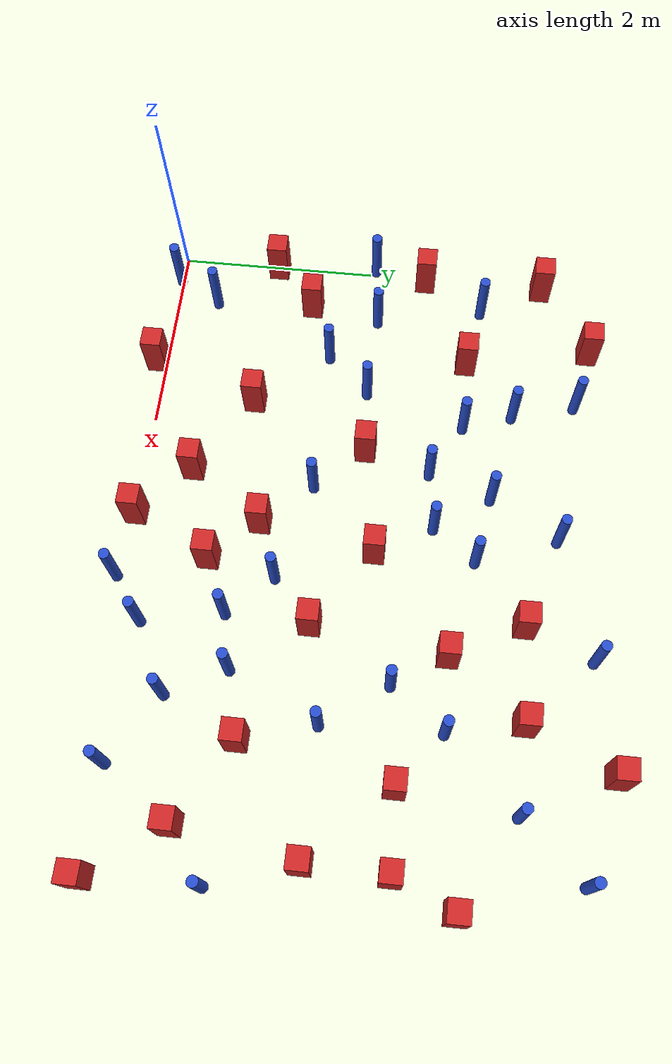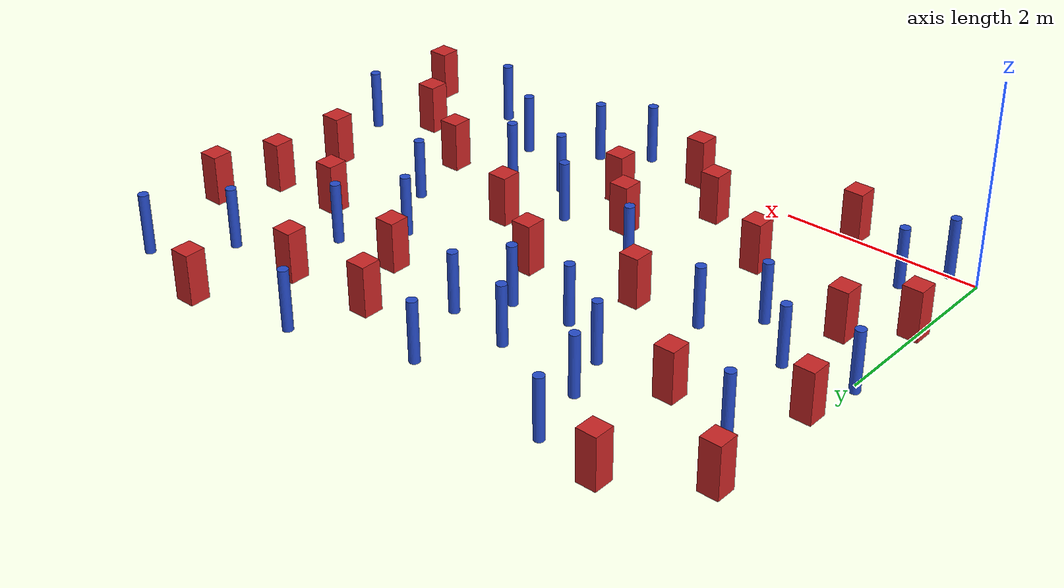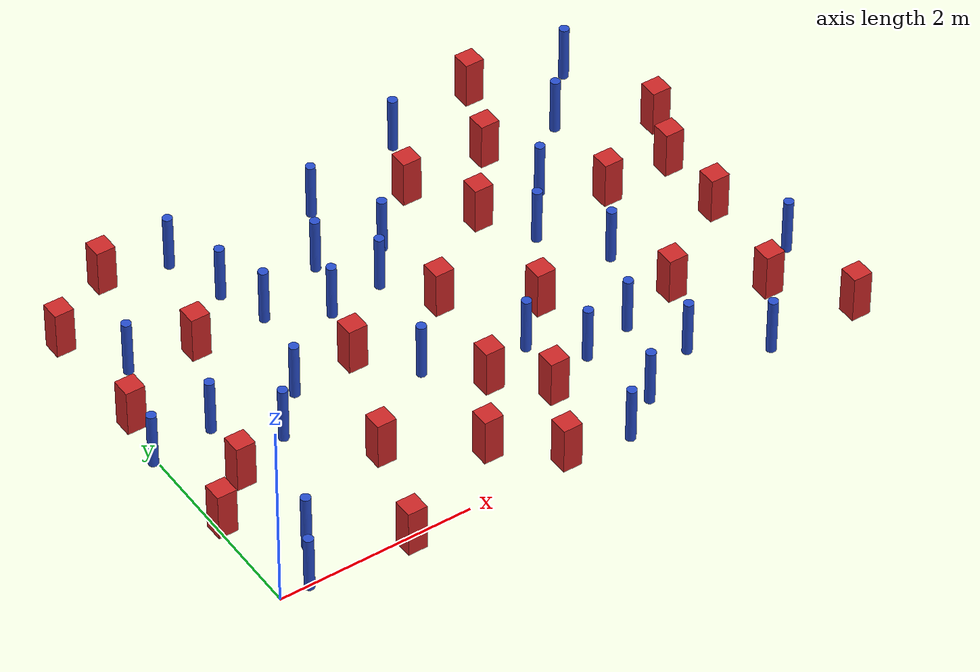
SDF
<sdf version="1.6">
 <model name="dense_1">
  <model name="pole_obstacle3">
   <static>true</static>
   <pose>1.4623566968 4.20926063526 -3.09024884793e-07 -7.19054271912e-07 -2.11315075134e-07 -1.93935509265e-07</pose>
   <link name="link">
    <pose>0 0 0.3 0 -0 0</pose>
    <inertial>
     <mass>1</mass>
     <inertia><ixx>0.145833</ixx><ixy>0</ixy><ixz>0</ixz><iyy>0.145833</iyy><iyz>0</iyz><izz>0.125</izz></inertia>
    </inertial>
    <collision name="collision">
     <geometry><cylinder><radius>0.05</radius><length>.6</length></cylinder></geometry>
    </collision>
    <visual name="visual">
     <geometry><cylinder><radius>0.05</radius><length>.6</length></cylinder></geometry>
     <material>
      <script><name>Gazebo/Blue</name><uri>file://media/materials/scripts/gazebo.material</uri></script>
     </material>
    </visual>
   </link>
  </model>
  <model name="square_post_obstacle4">
   <static>true</static>
   <pose>1.31986433456 -0.0795674390711 -4.36207812815e-07 3.75137919937e-06 9.77721102514e-07 2.47381364184e-05</pose>
   <link name="link">
    <pose>0 0 0.25 0 -0 0</pose>
    <inertial>
     <mass>100</mass>
     <inertia>
      <ixx>0.166667</ixx>
      <ixy>0</ixy>
      <ixz>0</ixz>
      <iyy>0.166667</iyy>
      <iyz>0</iyz>
      <izz>0.166667</izz>
     </inertia>
    </inertial>
    <collision name="collision"><geometry><box><size>.2 .2 .5</size></box></geometry></collision>
    <visual name="visual">
     <geometry><box><size>.2 .2 .5</size></box></geometry>
     <material>
      <script><name>Gazebo/Red</name><uri>file://media/materials/scripts/gazebo.material</uri></script>
     </material>
    </visual>
   </link>
  </model>
  <model name="pole_obstacle6">
   <static>true</static>
   <pose>2.60039260077 1.69104292245 -3.09024884793e-07 -7.19054271912e-07 -2.11315075122e-07 -1.93935509259e-07</pose>
   <link name="link">
    <pose>0 0 0.3 0 -0 0</pose>
    <inertial>
     <mass>1</mass>
     <inertia><ixx>0.145833</ixx><ixy>0</ixy><ixz>0</ixz><iyy>0.145833</iyy><iyz>0</iyz><izz>0.125</izz></inertia>
    </inertial>
    <collision name="collision">
     <geometry><cylinder><radius>0.05</radius><length>.6</length></cylinder></geometry>
    </collision>
    <visual name="visual">
     <geometry><cylinder><radius>0.05</radius><length>.6</length></cylinder></geometry>
     <material>
      <script><name>Gazebo/Blue</name><uri>file://media/materials/scripts/gazebo.material</uri></script>
     </material>
    </visual>
   </link>
  </model>
  <model name="square_post_obstacle10">
   <static>true</static>
   <pose>6.35777453444 3.31523075422 -4.36207812815e-07 3.75137919937e-06 9.77721102514e-07 2.47381364184e-05</pose>
   <link name="link">
    <pose>0 0 0.25 0 -0 0</pose>
    <inertial>
     <mass>100</mass>
     <inertia>
      <ixx>0.166667</ixx>
      <ixy>0</ixy>
      <ixz>0</ixz>
      <iyy>0.166667</iyy>
      <iyz>0</iyz>
      <izz>0.166667</izz>
     </inertia>
    </inertial>
    <collision name="collision"><geometry><box><size>.2 .2 .5</size></box></geometry></collision>
    <visual name="visual">
     <geometry><box><size>.2 .2 .5</size></box></geometry>
     <material>
      <script><name>Gazebo/Red</name><uri>file://media/materials/scripts/gazebo.material</uri></script>
     </material>
    </visual>
   </link>
  </model>
  <model name="square_post_obstacle19">
   <static>true</static>
   <pose>3.23109717422 2.34629957783 -4.36207812815e-07 3.75137919937e-06 9.77721102514e-07 2.47381364184e-05</pose>
   <link name="link">
    <pose>0 0 0.25 0 -0 0</pose>
    <inertial>
     <mass>100</mass>
     <inertia>
      <ixx>0.166667</ixx>
      <ixy>0</ixy>
      <ixz>0</ixz>
      <iyy>0.166667</iyy>
      <iyz>0</iyz>
      <izz>0.166667</izz>
     </inertia>
    </inertial>
    <collision name="collision"><geometry><box><size>.2 .2 .5</size></box></geometry></collision>
    <visual name="visual">
     <geometry><box><size>.2 .2 .5</size></box></geometry>
     <material>
      <script><name>Gazebo/Red</name><uri>file://media/materials/scripts/gazebo.material</uri></script>
     </material>
    </visual>
   </link>
  </model>
  <model name="square_post_obstacle31">
   <static>true</static>
   <pose>5.88534016546 0.849341082673 -4.36207812815e-07 3.75137919937e-06 9.77721102514e-07 2.47381364184e-05</pose>
   <link name="link">
    <pose>0 0 0.25 0 -0 0</pose>
    <inertial>
     <mass>100</mass>
     <inertia>
      <ixx>0.166667</ixx>
      <ixy>0</ixy>
      <ixz>0</ixz>
      <iyy>0.166667</iyy>
      <iyz>0</iyz>
      <izz>0.166667</izz>
     </inertia>
    </inertial>
    <collision name="collision"><geometry><box><size>.2 .2 .5</size></box></geometry></collision>
    <visual name="visual">
     <geometry><box><size>.2 .2 .5</size></box></geometry>
     <material>
      <script><name>Gazebo/Red</name><uri>file://media/materials/scripts/gazebo.material</uri></script>
     </material>
    </visual>
   </link>
  </model>
  <model name="square_post_obstacle33">
   <static>true</static>
   <pose>0.503062242504 1.44107326765 -4.36207812815e-07 3.75137919937e-06 9.77721102514e-07 2.47381364184e-05</pose>
   <link name="link">
    <pose>0 0 0.25 0 -0 0</pose>
    <inertial>
     <mass>100</mass>
     <inertia>
      <ixx>0.166667</ixx>
      <ixy>0</ixy>
      <ixz>0</ixz>
      <iyy>0.166667</iyy>
      <iyz>0</iyz>
      <izz>0.166667</izz>
     </inertia>
    </inertial>
    <collision name="collision"><geometry><box><size>.2 .2 .5</size></box></geometry></collision>
    <visual name="visual">
     <geometry><box><size>.2 .2 .5</size></box></geometry>
     <material>
      <script><name>Gazebo/Red</name><uri>file://media/materials/scripts/gazebo.material</uri></script>
     </material>
    </visual>
   </link>
  </model>
  <model name="pole_obstacle35">
   <static>true</static>
   <pose>0.620560896258 2.13645355765 -3.09024884793e-07 -7.19054271912e-07 -2.11315075129e-07 -1.93935509263e-07</pose>
   <link name="link">
    <pose>0 0 0.3 0 -0 0</pose>
    <inertial>
     <mass>1</mass>
     <inertia><ixx>0.145833</ixx><ixy>0</ixy><ixz>0</ixz><iyy>0.145833</iyy><iyz>0</iyz><izz>0.125</izz></inertia>
    </inertial>
    <collision name="collision">
     <geometry><cylinder><radius>0.05</radius><length>.6</length></cylinder></geometry>
    </collision>
    <visual name="visual">
     <geometry><cylinder><radius>0.05</radius><length>.6</length></cylinder></geometry>
     <material>
      <script><name>Gazebo/Blue</name><uri>file://media/materials/scripts/gazebo.material</uri></script>
     </material>
    </visual>
   </link>
  </model>
  <model name="pole_obstacle36">
   <static>true</static>
   <pose>6.04374949227 4.39701705484 -3.09024884793e-07 -7.19054271911e-07 -2.1131507516e-07 -1.93935509277e-07</pose>
   <link name="link">
    <pose>0 0 0.3 0 -0 0</pose>
    <inertial>
     <mass>1</mass>
     <inertia><ixx>0.145833</ixx><ixy>0</ixy><ixz>0</ixz><iyy>0.145833</iyy><iyz>0</iyz><izz>0.125</izz></inertia>
    </inertial>
    <collision name="collision">
     <geometry><cylinder><radius>0.05</radius><length>.6</length></cylinder></geometry>
    </collision>
    <visual name="visual">
     <geometry><cylinder><radius>0.05</radius><length>.6</length></cylinder></geometry>
     <material>
      <script><name>Gazebo/Blue</name><uri>file://media/materials/scripts/gazebo.material</uri></script>
     </material>
    </visual>
   </link>
  </model>
  <model name="square_post_obstacle39">
   <static>true</static>
   <pose>6.37643975947 0.168601150154 -4.36207812815e-07 3.75137919937e-06 9.77721102514e-07 2.47381364184e-05</pose>
   <link name="link">
    <pose>0 0 0.25 0 -0 0</pose>
    <inertial>
     <mass>100</mass>
     <inertia>
      <ixx>0.166667</ixx>
      <ixy>0</ixy>
      <ixz>0</ixz>
      <iyy>0.166667</iyy>
      <iyz>0</iyz>
      <izz>0.166667</izz>
     </inertia>
    </inertial>
    <collision name="collision"><geometry><box><size>.2 .2 .5</size></box></geometry></collision>
    <visual name="visual">
     <geometry><box><size>.2 .2 .5</size></box></geometry>
     <material>
      <script><name>Gazebo/Red</name><uri>file://media/materials/scripts/gazebo.material</uri></script>
     </material>
    </visual>
   </link>
  </model>
  <model name="pole_obstacle43">
   <static>true</static>
   <pose>5.53462977973 3.8077475827 -3.09024884793e-07 -7.19054271912e-07 -2.11315075144e-07 -1.93935509269e-07</pose>
   <link name="link">
    <pose>0 0 0.3 0 -0 0</pose>
    <inertial>
     <mass>1</mass>
     <inertia><ixx>0.145833</ixx><ixy>0</ixy><ixz>0</ixz><iyy>0.145833</iyy><iyz>0</iyz><izz>0.125</izz></inertia>
    </inertial>
    <collision name="collision">
     <geometry><cylinder><radius>0.05</radius><length>.6</length></cylinder></geometry>
    </collision>
    <visual name="visual">
     <geometry><cylinder><radius>0.05</radius><length>.6</length></cylinder></geometry>
     <material>
      <script><name>Gazebo/Blue</name><uri>file://media/materials/scripts/gazebo.material</uri></script>
     </material>
    </visual>
   </link>
  </model>
  <model name="pole_obstacle48">
   <static>true</static>
   <pose>4.92300519197 2.00692325377 -3.09024884793e-07 -7.19054271912e-07 -2.1131507513e-07 -1.93935509262e-07</pose>
   <link name="link">
    <pose>0 0 0.3 0 -0 0</pose>
    <inertial>
     <mass>1</mass>
     <inertia><ixx>0.145833</ixx><ixy>0</ixy><ixz>0</ixz><iyy>0.145833</iyy><iyz>0</iyz><izz>0.125</izz></inertia>
    </inertial>
    <collision name="collision">
     <geometry><cylinder><radius>0.05</radius><length>.6</length></cylinder></geometry>
    </collision>
    <visual name="visual">
     <geometry><cylinder><radius>0.05</radius><length>.6</length></cylinder></geometry>
     <material>
      <script><name>Gazebo/Blue</name><uri>file://media/materials/scripts/gazebo.material</uri></script>
     </material>
    </visual>
   </link>
  </model>
  <model name="square_post_obstacle50">
   <static>true</static>
   <pose>5.38820021094 2.7258554998 -4.36207812815e-07 3.75137919937e-06 9.77721102514e-07 2.47381364184e-05</pose>
   <link name="link">
    <pose>0 0 0.25 0 -0 0</pose>
    <inertial>
     <mass>100</mass>
     <inertia>
      <ixx>0.166667</ixx>
      <ixy>0</ixy>
      <ixz>0</ixz>
      <iyy>0.166667</iyy>
      <iyz>0</iyz>
      <izz>0.166667</izz>
     </inertia>
    </inertial>
    <collision name="collision"><geometry><box><size>.2 .2 .5</size></box></geometry></collision>
    <visual name="visual">
     <geometry><box><size>.2 .2 .5</size></box></geometry>
     <material>
      <script><name>Gazebo/Red</name><uri>file://media/materials/scripts/gazebo.material</uri></script>
     </material>
    </visual>
   </link>
  </model>
  <model name="square_post_obstacle53">
   <static>true</static>
   <pose>4.00072334522 1.82328823469 -4.36207812815e-07 3.75137919937e-06 9.77721102514e-07 2.47381364184e-05</pose>
   <link name="link">
    <pose>0 0 0.25 0 -0 0</pose>
    <inertial>
     <mass>100</mass>
     <inertia>
      <ixx>0.166667</ixx>
      <ixy>0</ixy>
      <ixz>0</ixz>
      <iyy>0.166667</iyy>
      <iyz>0</iyz>
      <izz>0.166667</izz>
     </inertia>
    </inertial>
    <collision name="collision"><geometry><box><size>.2 .2 .5</size></box></geometry></collision>
    <visual name="visual">
     <geometry><box><size>.2 .2 .5</size></box></geometry>
     <material>
      <script><name>Gazebo/Red</name><uri>file://media/materials/scripts/gazebo.material</uri></script>
     </material>
    </visual>
   </link>
  </model>
  <model name="square_post_obstacle59">
   <static>true</static>
   <pose>3.43612875165 0.786175362388 -4.36207812815e-07 3.75137919937e-06 9.77721102514e-07 2.47381364184e-05</pose>
   <link name="link">
    <pose>0 0 0.25 0 -0 0</pose>
    <inertial>
     <mass>100</mass>
     <inertia>
      <ixx>0.166667</ixx>
      <ixy>0</ixy>
      <ixz>0</ixz>
      <iyy>0.166667</iyy>
      <iyz>0</iyz>
      <izz>0.166667</izz>
     </inertia>
    </inertial>
    <collision name="collision"><geometry><box><size>.2 .2 .5</size></box></geometry></collision>
    <visual name="visual">
     <geometry><box><size>.2 .2 .5</size></box></geometry>
     <material>
      <script><name>Gazebo/Red</name><uri>file://media/materials/scripts/gazebo.material</uri></script>
     </material>
    </visual>
   </link>
  </model>
  <model name="pole_obstacle56">
   <static>true</static>
   <pose>2.3536835347 2.80569661578 -3.09024884793e-07 -7.19054271912e-07 -2.11315075144e-07 -1.93935509271e-07</pose>
   <link name="link">
    <pose>0 0 0.3 0 -0 0</pose>
    <inertial>
     <mass>1</mass>
     <inertia><ixx>0.145833</ixx><ixy>0</ixy><ixz>0</ixz><iyy>0.145833</iyy><iyz>0</iyz><izz>0.125</izz></inertia>
    </inertial>
    <collision name="collision">
     <geometry><cylinder><radius>0.05</radius><length>.6</length></cylinder></geometry>
    </collision>
    <visual name="visual">
     <geometry><cylinder><radius>0.05</radius><length>.6</length></cylinder></geometry>
     <material>
      <script><name>Gazebo/Blue</name><uri>file://media/materials/scripts/gazebo.material</uri></script>
     </material>
    </visual>
   </link>
  </model>
  <model name="pole_obstacle59">
   <static>true</static>
   <pose>4.78064047559 0.588167447889 -3.09024884793e-07 -7.19054271912e-07 -2.11315075134e-07 -1.93935509265e-07</pose>
   <link name="link">
    <pose>0 0 0.3 0 -0 0</pose>
    <inertial>
     <mass>1</mass>
     <inertia><ixx>0.145833</ixx><ixy>0</ixy><ixz>0</ixz><iyy>0.145833</iyy><iyz>0</iyz><izz>0.125</izz></inertia>
    </inertial>
    <collision name="collision">
     <geometry><cylinder><radius>0.05</radius><length>.6</length></cylinder></geometry>
    </collision>
    <visual name="visual">
     <geometry><cylinder><radius>0.05</radius><length>.6</length></cylinder></geometry>
     <material>
      <script><name>Gazebo/Blue</name><uri>file://media/materials/scripts/gazebo.material</uri></script>
     </material>
    </visual>
   </link>
  </model>
  <model name="square_post_obstacle62">
   <static>true</static>
   <pose>3.04533311304 0.017092746261 -4.36207812815e-07 3.75137919937e-06 9.77721102514e-07 2.47381364184e-05</pose>
   <link name="link">
    <pose>0 0 0.25 0 -0 0</pose>
    <inertial>
     <mass>100</mass>
     <inertia>
      <ixx>0.166667</ixx>
      <ixy>0</ixy>
      <ixz>0</ixz>
      <iyy>0.166667</iyy>
      <iyz>0</iyz>
      <izz>0.166667</izz>
     </inertia>
    </inertial>
    <collision name="collision"><geometry><box><size>.2 .2 .5</size></box></geometry></collision>
    <visual name="visual">
     <geometry><box><size>.2 .2 .5</size></box></geometry>
     <material>
      <script><name>Gazebo/Red</name><uri>file://media/materials/scripts/gazebo.material</uri></script>
     </material>
    </visual>
   </link>
  </model>
  <model name="pole_obstacle61">
   <static>true</static>
   <pose>4.10413252432 4.44278507739 -3.09024884793e-07 -7.19054271911e-07 -2.1131507516e-07 -1.93935509277e-07</pose>
   <link name="link">
    <pose>0 0 0.3 0 -0 0</pose>
    <inertial>
     <mass>1</mass>
     <inertia><ixx>0.145833</ixx><ixy>0</ixy><ixz>0</ixz><iyy>0.145833</iyy><iyz>0</iyz><izz>0.125</izz></inertia>
    </inertial>
    <collision name="collision">
     <geometry><cylinder><radius>0.05</radius><length>.6</length></cylinder></geometry>
    </collision>
    <visual name="visual">
     <geometry><cylinder><radius>0.05</radius><length>.6</length></cylinder></geometry>
     <material>
      <script><name>Gazebo/Blue</name><uri>file://media/materials/scripts/gazebo.material</uri></script>
     </material>
    </visual>
   </link>
  </model>
  <model name="square_post_obstacle65">
   <static>true</static>
   <pose>0.0606723394 3.82437056992 -4.36207812815e-07 3.75137919937e-06 9.77721102514e-07 2.47381364184e-05</pose>
   <link name="link">
    <pose>0 0 0.25 0 -0 0</pose>
    <inertial>
     <mass>100</mass>
     <inertia>
      <ixx>0.166667</ixx>
      <ixy>0</ixy>
      <ixz>0</ixz>
      <iyy>0.166667</iyy>
      <iyz>0</iyz>
      <izz>0.166667</izz>
     </inertia>
    </inertial>
    <collision name="collision"><geometry><box><size>.2 .2 .5</size></box></geometry></collision>
    <visual name="visual">
     <geometry><box><size>.2 .2 .5</size></box></geometry>
     <material>
      <script><name>Gazebo/Red</name><uri>file://media/materials/scripts/gazebo.material</uri></script>
     </material>
    </visual>
   </link>
  </model>
  <model name="pole_obstacle78">
   <static>true</static>
   <pose>4.50170225332 1.14489434599 -3.09024884793e-07 -7.19054271912e-07 -2.11315075124e-07 -1.93935509261e-07</pose>
   <link name="link">
    <pose>0 0 0.3 0 -0 0</pose>
    <inertial>
     <mass>1</mass>
     <inertia><ixx>0.145833</ixx><ixy>0</ixy><ixz>0</ixz><iyy>0.145833</iyy><iyz>0</iyz><izz>0.125</izz></inertia>
    </inertial>
    <collision name="collision">
     <geometry><cylinder><radius>0.05</radius><length>.6</length></cylinder></geometry>
    </collision>
    <visual name="visual">
     <geometry><cylinder><radius>0.05</radius><length>.6</length></cylinder></geometry>
     <material>
      <script><name>Gazebo/Blue</name><uri>file://media/materials/scripts/gazebo.material</uri></script>
     </material>
    </visual>
   </link>
  </model>
  <model name="square_post_obstacle79">
   <static>true</static>
   <pose>6.08925654477 1.99488444168 -4.36207812815e-07 3.75137919937e-06 9.77721102514e-07 2.47381364184e-05</pose>
   <link name="link">
    <pose>0 0 0.25 0 -0 0</pose>
    <inertial>
     <mass>100</mass>
     <inertia>
      <ixx>0.166667</ixx>
      <ixy>0</ixy>
      <ixz>0</ixz>
      <iyy>0.166667</iyy>
      <iyz>0</iyz>
      <izz>0.166667</izz>
     </inertia>
    </inertial>
    <collision name="collision"><geometry><box><size>.2 .2 .5</size></box></geometry></collision>
    <visual name="visual">
     <geometry><box><size>.2 .2 .5</size></box></geometry>
     <material>
      <script><name>Gazebo/Red</name><uri>file://media/materials/scripts/gazebo.material</uri></script>
     </material>
    </visual>
   </link>
  </model>
  <model name="pole_obstacle105">
   <static>true</static>
   <pose>0.404624400005 3.20533084339 -3.09024884793e-07 -7.19054271912e-07 -2.11315075129e-07 -1.93935509263e-07</pose>
   <link name="link">
    <pose>0 0 0.3 0 -0 0</pose>
    <inertial>
     <mass>1</mass>
     <inertia><ixx>0.145833</ixx><ixy>0</ixy><ixz>0</ixz><iyy>0.145833</iyy><iyz>0</iyz><izz>0.125</izz></inertia>
    </inertial>
    <collision name="collision">
     <geometry><cylinder><radius>0.05</radius><length>.6</length></cylinder></geometry>
    </collision>
    <visual name="visual">
     <geometry><cylinder><radius>0.05</radius><length>.6</length></cylinder></geometry>
     <material>
      <script><name>Gazebo/Blue</name><uri>file://media/materials/scripts/gazebo.material</uri></script>
     </material>
    </visual>
   </link>
  </model>
  <model name="square_post_obstacle94">
   <static>true</static>
   <pose>5.11274729583 4.64767106553 -4.36207812815e-07 3.75137919937e-06 9.77721102514e-07 2.47381364184e-05</pose>
   <link name="link">
    <pose>0 0 0.25 0 -0 0</pose>
    <inertial>
     <mass>100</mass>
     <inertia>
      <ixx>0.166667</ixx>
      <ixy>0</ixy>
      <ixz>0</ixz>
      <iyy>0.166667</iyy>
      <iyz>0</iyz>
      <izz>0.166667</izz>
     </inertia>
    </inertial>
    <collision name="collision"><geometry><box><size>.2 .2 .5</size></box></geometry></collision>
    <visual name="visual">
     <geometry><box><size>.2 .2 .5</size></box></geometry>
     <material>
      <script><name>Gazebo/Red</name><uri>file://media/materials/scripts/gazebo.material</uri></script>
     </material>
    </visual>
   </link>
  </model>
  <model name="square_post_obstacle100">
   <static>true</static>
   <pose>1.05827582543 3.08532761732 -4.36207812815e-07 3.75137919937e-06 9.77721102514e-07 2.47381364184e-05</pose>
   <link name="link">
    <pose>0 0 0.25 0 -0 0</pose>
    <inertial>
     <mass>100</mass>
     <inertia>
      <ixx>0.166667</ixx>
      <ixy>0</ixy>
      <ixz>0</ixz>
      <iyy>0.166667</iyy>
      <iyz>0</iyz>
      <izz>0.166667</izz>
     </inertia>
    </inertial>
    <collision name="collision"><geometry><box><size>.2 .2 .5</size></box></geometry></collision>
    <visual name="visual">
     <geometry><box><size>.2 .2 .5</size></box></geometry>
     <material>
      <script><name>Gazebo/Red</name><uri>file://media/materials/scripts/gazebo.material</uri></script>
     </material>
    </visual>
   </link>
  </model>
  <model name="pole_obstacle116">
   <static>true</static>
   <pose>6.35552639708 1.19837929352 -3.09024884793e-07 -7.19054271912e-07 -2.11315075124e-07 -1.93935509261e-07</pose>
   <link name="link">
    <pose>0 0 0.3 0 -0 0</pose>
    <inertial>
     <mass>1</mass>
     <inertia><ixx>0.145833</ixx><ixy>0</ixy><ixz>0</ixz><iyy>0.145833</iyy><iyz>0</iyz><izz>0.125</izz></inertia>
    </inertial>
    <collision name="collision">
     <geometry><cylinder><radius>0.05</radius><length>.6</length></cylinder></geometry>
    </collision>
    <visual name="visual">
     <geometry><cylinder><radius>0.05</radius><length>.6</length></cylinder></geometry>
     <material>
      <script><name>Gazebo/Blue</name><uri>file://media/materials/scripts/gazebo.material</uri></script>
     </material>
    </visual>
   </link>
  </model>
  <model name="square_post_obstacle105">
   <static>true</static>
   <pose>2.52008034715 0.49643952337 -4.36207812815e-07 3.75137919937e-06 9.77721102514e-07 2.47381364184e-05</pose>
   <link name="link">
    <pose>0 0 0.25 0 -0 0</pose>
    <inertial>
     <mass>100</mass>
     <inertia>
      <ixx>0.166667</ixx>
      <ixy>0</ixy>
      <ixz>0</ixz>
      <iyy>0.166667</iyy>
      <iyz>0</iyz>
      <izz>0.166667</izz>
     </inertia>
    </inertial>
    <collision name="collision"><geometry><box><size>.2 .2 .5</size></box></geometry></collision>
    <visual name="visual">
     <geometry><box><size>.2 .2 .5</size></box></geometry>
     <material>
      <script><name>Gazebo/Red</name><uri>file://media/materials/scripts/gazebo.material</uri></script>
     </material>
    </visual>
   </link>
  </model>
  <model name="square_post_obstacle108">
   <static>true</static>
   <pose>0.811067516007 4.33124412876 -4.36207812815e-07 3.75137919937e-06 9.77721102514e-07 2.47381364184e-05</pose>
   <link name="link">
    <pose>0 0 0.25 0 -0 0</pose>
    <inertial>
     <mass>100</mass>
     <inertia>
      <ixx>0.166667</ixx>
      <ixy>0</ixy>
      <ixz>0</ixz>
      <iyy>0.166667</iyy>
      <iyz>0</iyz>
      <izz>0.166667</izz>
     </inertia>
    </inertial>
    <collision name="collision"><geometry><box><size>.2 .2 .5</size></box></geometry></collision>
    <visual name="visual">
     <geometry><box><size>.2 .2 .5</size></box></geometry>
     <material>
      <script><name>Gazebo/Red</name><uri>file://media/materials/scripts/gazebo.material</uri></script>
     </material>
    </visual>
   </link>
  </model>
  <model name="pole_obstacle135">
   <static>true</static>
   <pose>4.12170223683 0.249247125609 -3.09024884793e-07 -7.19054271912e-07 -2.11315075124e-07 -1.93935509261e-07</pose>
   <link name="link">
    <pose>0 0 0.3 0 -0 0</pose>
    <inertial>
     <mass>1</mass>
     <inertia><ixx>0.145833</ixx><ixy>0</ixy><ixz>0</ixz><iyy>0.145833</iyy><iyz>0</iyz><izz>0.125</izz></inertia>
    </inertial>
    <collision name="collision">
     <geometry><cylinder><radius>0.05</radius><length>.6</length></cylinder></geometry>
    </collision>
    <visual name="visual">
     <geometry><cylinder><radius>0.05</radius><length>.6</length></cylinder></geometry>
     <material>
      <script><name>Gazebo/Blue</name><uri>file://media/materials/scripts/gazebo.material</uri></script>
     </material>
    </visual>
   </link>
  </model>
  <model name="square_post_obstacle122">
   <static>true</static>
   <pose>6.11204006504 2.7562212502 -4.36207812815e-07 3.75137919937e-06 9.77721102514e-07 2.47381364184e-05</pose>
   <link name="link">
    <pose>0 0 0.25 0 -0 0</pose>
    <inertial>
     <mass>100</mass>
     <inertia>
      <ixx>0.166667</ixx>
      <ixy>0</ixy>
      <ixz>0</ixz>
      <iyy>0.166667</iyy>
      <iyz>0</iyz>
      <izz>0.166667</izz>
     </inertia>
    </inertial>
    <collision name="collision"><geometry><box><size>.2 .2 .5</size></box></geometry></collision>
    <visual name="visual">
     <geometry><box><size>.2 .2 .5</size></box></geometry>
     <material>
      <script><name>Gazebo/Red</name><uri>file://media/materials/scripts/gazebo.material</uri></script>
     </material>
    </visual>
   </link>
  </model>
  <model name="pole_obstacle140">
   <static>true</static>
   <pose>3.97463081743 1.0243708159 -3.09024884848e-07 -7.19054271902e-07 -2.11315075194e-07 -1.93935509285e-07</pose>
   <link name="link">
    <pose>0 0 0.3 0 -0 0</pose>
    <inertial>
     <mass>1</mass>
     <inertia><ixx>0.145833</ixx><ixy>0</ixy><ixz>0</ixz><iyy>0.145833</iyy><iyz>0</iyz><izz>0.125</izz></inertia>
    </inertial>
    <collision name="collision">
     <geometry><cylinder><radius>0.05</radius><length>.6</length></cylinder></geometry>
    </collision>
    <visual name="visual">
     <geometry><cylinder><radius>0.05</radius><length>.6</length></cylinder></geometry>
     <material>
      <script><name>Gazebo/Blue</name><uri>file://media/materials/scripts/gazebo.material</uri></script>
     </material>
    </visual>
   </link>
  </model>
  <model name="square_post_obstacle126">
   <static>true</static>
   <pose>3.02694053534 1.22435955373 -4.36207812815e-07 3.75137919937e-06 9.77721102514e-07 2.47381364184e-05</pose>
   <link name="link">
    <pose>0 0 0.25 0 -0 0</pose>
    <inertial>
     <mass>100</mass>
     <inertia>
      <ixx>0.166667</ixx>
      <ixy>0</ixy>
      <ixz>0</ixz>
      <iyy>0.166667</iyy>
      <iyz>0</iyz>
      <izz>0.166667</izz>
     </inertia>
    </inertial>
    <collision name="collision"><geometry><box><size>.2 .2 .5</size></box></geometry></collision>
    <visual name="visual">
     <geometry><box><size>.2 .2 .5</size></box></geometry>
     <material>
      <script><name>Gazebo/Red</name><uri>file://media/materials/scripts/gazebo.material</uri></script>
     </material>
    </visual>
   </link>
  </model>
  <model name="pole_obstacle148">
   <static>true</static>
   <pose>1.10959496422 1.68496399387 -3.09024884793e-07 -7.19054271912e-07 -2.1131507513e-07 -1.93935509263e-07</pose>
   <link name="link">
    <pose>0 0 0.3 0 -0 0</pose>
    <inertial>
     <mass>1</mass>
     <inertia><ixx>0.145833</ixx><ixy>0</ixy><ixz>0</ixz><iyy>0.145833</iyy><iyz>0</iyz><izz>0.125</izz></inertia>
    </inertial>
    <collision name="collision">
     <geometry><cylinder><radius>0.05</radius><length>.6</length></cylinder></geometry>
    </collision>
    <visual name="visual">
     <geometry><cylinder><radius>0.05</radius><length>.6</length></cylinder></geometry>
     <material>
      <script><name>Gazebo/Blue</name><uri>file://media/materials/scripts/gazebo.material</uri></script>
     </material>
    </visual>
   </link>
  </model>
  <model name="square_post_obstacle137">
   <static>true</static>
   <pose>2.15858224603 2.15805475401 -4.36207812815e-07 3.75137919937e-06 9.77721102514e-07 2.47381364184e-05</pose>
   <link name="link">
    <pose>0 0 0.25 0 -0 0</pose>
    <inertial>
     <mass>100</mass>
     <inertia>
      <ixx>0.166667</ixx>
      <ixy>0</ixy>
      <ixz>0</ixz>
      <iyy>0.166667</iyy>
      <iyz>0</iyz>
      <izz>0.166667</izz>
     </inertia>
    </inertial>
    <collision name="collision"><geometry><box><size>.2 .2 .5</size></box></geometry></collision>
    <visual name="visual">
     <geometry><box><size>.2 .2 .5</size></box></geometry>
     <material>
      <script><name>Gazebo/Red</name><uri>file://media/materials/scripts/gazebo.material</uri></script>
     </material>
    </visual>
   </link>
  </model>
  <model name="square_post_obstacle144">
   <static>true</static>
   <pose>4.1787152346 3.1085623917 -4.36207812815e-07 3.75137919937e-06 9.77721102514e-07 2.47381364184e-05</pose>
   <link name="link">
    <pose>0 0 0.25 0 -0 0</pose>
    <inertial>
     <mass>100</mass>
     <inertia>
      <ixx>0.166667</ixx>
      <ixy>0</ixy>
      <ixz>0</ixz>
      <iyy>0.166667</iyy>
      <iyz>0</iyz>
      <izz>0.166667</izz>
     </inertia>
    </inertial>
    <collision name="collision"><geometry><box><size>.2 .2 .5</size></box></geometry></collision>
    <visual name="visual">
     <geometry><box><size>.2 .2 .5</size></box></geometry>
     <material>
      <script><name>Gazebo/Red</name><uri>file://media/materials/scripts/gazebo.material</uri></script>
     </material>
    </visual>
   </link>
  </model>
  <model name="pole_obstacle156">
   <static>true</static>
   <pose>4.88693382808 3.12632480685 -3.09024884793e-07 -7.19054271912e-07 -2.11315075144e-07 -1.93935509269e-07</pose>
   <link name="link">
    <pose>0 0 0.3 0 -0 0</pose>
    <inertial>
     <mass>1</mass>
     <inertia><ixx>0.145833</ixx><ixy>0</ixy><ixz>0</ixz><iyy>0.145833</iyy><iyz>0</iyz><izz>0.125</izz></inertia>
    </inertial>
    <collision name="collision">
     <geometry><cylinder><radius>0.05</radius><length>.6</length></cylinder></geometry>
    </collision>
    <visual name="visual">
     <geometry><cylinder><radius>0.05</radius><length>.6</length></cylinder></geometry>
     <material>
      <script><name>Gazebo/Blue</name><uri>file://media/materials/scripts/gazebo.material</uri></script>
     </material>
    </visual>
   </link>
  </model>
  <model name="square_post_obstacle150">
   <static>true</static>
   <pose>0.0444271170436 1.0240140192 -4.36207812815e-07 3.75137919937e-06 9.77721102514e-07 2.47381364184e-05</pose>
   <link name="link">
    <pose>0 0 0.25 0 -0 0</pose>
    <inertial>
     <mass>100</mass>
     <inertia>
      <ixx>0.166667</ixx>
      <ixy>0</ixy>
      <ixz>0</ixz>
      <iyy>0.166667</iyy>
      <iyz>0</iyz>
      <izz>0.166667</izz>
     </inertia>
    </inertial>
    <collision name="collision"><geometry><box><size>.2 .2 .5</size></box></geometry></collision>
    <visual name="visual">
     <geometry><box><size>.2 .2 .5</size></box></geometry>
     <material>
      <script><name>Gazebo/Red</name><uri>file://media/materials/scripts/gazebo.material</uri></script>
     </material>
    </visual>
   </link>
  </model>
  <model name="square_post_obstacle162">
   <static>true</static>
   <pose>3.82959526486 3.79223630442 -4.36207812815e-07 3.75137919937e-06 9.77721102514e-07 2.47381364184e-05</pose>
   <link name="link">
    <pose>0 0 0.25 0 -0 0</pose>
    <inertial>
     <mass>100</mass>
     <inertia>
      <ixx>0.166667</ixx>
      <ixy>0</ixy>
      <ixz>0</ixz>
      <iyy>0.166667</iyy>
      <iyz>0</iyz>
      <izz>0.166667</izz>
     </inertia>
    </inertial>
    <collision name="collision"><geometry><box><size>.2 .2 .5</size></box></geometry></collision>
    <visual name="visual">
     <geometry><box><size>.2 .2 .5</size></box></geometry>
     <material>
      <script><name>Gazebo/Red</name><uri>file://media/materials/scripts/gazebo.material</uri></script>
     </material>
    </visual>
   </link>
  </model>
  <model name="pole_obstacle172">
   <static>true</static>
   <pose>0.543117553669 0.424403637157 -3.09024884793e-07 -7.19054271912e-07 -2.11315075129e-07 -1.93935509261e-07</pose>
   <link name="link">
    <pose>0 0 0.3 0 -0 0</pose>
    <inertial>
     <mass>1</mass>
     <inertia><ixx>0.145833</ixx><ixy>0</ixy><ixz>0</ixz><iyy>0.145833</iyy><iyz>0</iyz><izz>0.125</izz></inertia>
    </inertial>
    <collision name="collision">
     <geometry><cylinder><radius>0.05</radius><length>.6</length></cylinder></geometry>
    </collision>
    <visual name="visual">
     <geometry><cylinder><radius>0.05</radius><length>.6</length></cylinder></geometry>
     <material>
      <script><name>Gazebo/Blue</name><uri>file://media/materials/scripts/gazebo.material</uri></script>
     </material>
    </visual>
   </link>
  </model>
  <model name="pole_obstacle173">
   <static>true</static>
   <pose>3.69852856373 -0.0536795828852 -3.09024884793e-07 -7.19054271912e-07 -2.11315075117e-07 -1.93935509258e-07</pose>
   <link name="link">
    <pose>0 0 0.3 0 -0 0</pose>
    <inertial>
     <mass>1</mass>
     <inertia><ixx>0.145833</ixx><ixy>0</ixy><ixz>0</ixz><iyy>0.145833</iyy><iyz>0</iyz><izz>0.125</izz></inertia>
    </inertial>
    <collision name="collision">
     <geometry><cylinder><radius>0.05</radius><length>.6</length></cylinder></geometry>
    </collision>
    <visual name="visual">
     <geometry><cylinder><radius>0.05</radius><length>.6</length></cylinder></geometry>
     <material>
      <script><name>Gazebo/Blue</name><uri>file://media/materials/scripts/gazebo.material</uri></script>
     </material>
    </visual>
   </link>
  </model>
  <model name="pole_obstacle175">
   <static>true</static>
   <pose>5.43417389257 0.181284381065 -3.09024884793e-07 -7.19054271912e-07 -2.11315075122e-07 -1.9393550926e-07</pose>
   <link name="link">
    <pose>0 0 0.3 0 -0 0</pose>
    <inertial>
     <mass>1</mass>
     <inertia><ixx>0.145833</ixx><ixy>0</ixy><ixz>0</ixz><iyy>0.145833</iyy><iyz>0</iyz><izz>0.125</izz></inertia>
    </inertial>
    <collision name="collision">
     <geometry><cylinder><radius>0.05</radius><length>.6</length></cylinder></geometry>
    </collision>
    <visual name="visual">
     <geometry><cylinder><radius>0.05</radius><length>.6</length></cylinder></geometry>
     <material>
      <script><name>Gazebo/Blue</name><uri>file://media/materials/scripts/gazebo.material</uri></script>
     </material>
    </visual>
   </link>
  </model>
  <model name="square_post_obstacle165">
   <static>true</static>
   <pose>1.70171354791 0.990357596513 -4.36207812815e-07 3.75137919937e-06 9.77721102514e-07 2.47381364184e-05</pose>
   <link name="link">
    <pose>0 0 0.25 0 -0 0</pose>
    <inertial>
     <mass>100</mass>
     <inertia>
      <ixx>0.166667</ixx>
      <ixy>0</ixy>
      <ixz>0</ixz>
      <iyy>0.166667</iyy>
      <iyz>0</iyz>
      <izz>0.166667</izz>
     </inertia>
    </inertial>
    <collision name="collision"><geometry><box><size>.2 .2 .5</size></box></geometry></collision>
    <visual name="visual">
     <geometry><box><size>.2 .2 .5</size></box></geometry>
     <material>
      <script><name>Gazebo/Red</name><uri>file://media/materials/scripts/gazebo.material</uri></script>
     </material>
    </visual>
   </link>
  </model>
  <model name="pole_obstacle184">
   <static>true</static>
   <pose>2.93185327053 2.8873278645 -3.09024884793e-07 -7.19054271912e-07 -2.11315075144e-07 -1.93935509271e-07</pose>
   <link name="link">
    <pose>0 0 0.3 0 -0 0</pose>
    <inertial>
     <mass>1</mass>
     <inertia><ixx>0.145833</ixx><ixy>0</ixy><ixz>0</ixz><iyy>0.145833</iyy><iyz>0</iyz><izz>0.125</izz></inertia>
    </inertial>
    <collision name="collision">
     <geometry><cylinder><radius>0.05</radius><length>.6</length></cylinder></geometry>
    </collision>
    <visual name="visual">
     <geometry><cylinder><radius>0.05</radius><length>.6</length></cylinder></geometry>
     <material>
      <script><name>Gazebo/Blue</name><uri>file://media/materials/scripts/gazebo.material</uri></script>
     </material>
    </visual>
   </link>
  </model>
  <model name="pole_obstacle185">
   <static>true</static>
   <pose>1.63498483423 3.58603410617 -3.09024884793e-07 -7.19054271912e-07 -2.11315075132e-07 -1.93935509263e-07</pose>
   <link name="link">
    <pose>0 0 0.3 0 -0 0</pose>
    <inertial>
     <mass>1</mass>
     <inertia><ixx>0.145833</ixx><ixy>0</ixy><ixz>0</ixz><iyy>0.145833</iyy><iyz>0</iyz><izz>0.125</izz></inertia>
    </inertial>
    <collision name="collision">
     <geometry><cylinder><radius>0.05</radius><length>.6</length></cylinder></geometry>
    </collision>
    <visual name="visual">
     <geometry><cylinder><radius>0.05</radius><length>.6</length></cylinder></geometry>
     <material>
      <script><name>Gazebo/Blue</name><uri>file://media/materials/scripts/gazebo.material</uri></script>
     </material>
    </visual>
   </link>
  </model>
  <model name="pole_obstacle186">
   <static>true</static>
   <pose>3.23499505537 3.3063418956 -3.09024884793e-07 -7.19054271912e-07 -2.11315075144e-07 -1.93935509271e-07</pose>
   <link name="link">
    <pose>0 0 0.3 0 -0 0</pose>
    <inertial>
     <mass>1</mass>
     <inertia><ixx>0.145833</ixx><ixy>0</ixy><ixz>0</ixz><iyy>0.145833</iyy><iyz>0</iyz><izz>0.125</izz></inertia>
    </inertial>
    <collision name="collision">
     <geometry><cylinder><radius>0.05</radius><length>.6</length></cylinder></geometry>
    </collision>
    <visual name="visual">
     <geometry><cylinder><radius>0.05</radius><length>.6</length></cylinder></geometry>
     <material>
      <script><name>Gazebo/Blue</name><uri>file://media/materials/scripts/gazebo.material</uri></script>
     </material>
    </visual>
   </link>
  </model>
  <model name="square_post_obstacle182">
   <static>true</static>
   <pose>0.0674520133952 2.59814359292 -4.36207812815e-07 3.75137919937e-06 9.77721102514e-07 2.47381364184e-05</pose>
   <link name="link">
    <pose>0 0 0.25 0 -0 0</pose>
    <inertial>
     <mass>100</mass>
     <inertia>
      <ixx>0.166667</ixx>
      <ixy>0</ixy>
      <ixz>0</ixz>
      <iyy>0.166667</iyy>
      <iyz>0</iyz>
      <izz>0.166667</izz>
     </inertia>
    </inertial>
    <collision name="collision"><geometry><box><size>.2 .2 .5</size></box></geometry></collision>
    <visual name="visual">
     <geometry><box><size>.2 .2 .5</size></box></geometry>
     <material>
      <script><name>Gazebo/Red</name><uri>file://media/materials/scripts/gazebo.material</uri></script>
     </material>
    </visual>
   </link>
  </model>
  <model name="pole_obstacle194">
   <static>true</static>
   <pose>4.50346043025 2.61179166293 -3.09024884793e-07 -7.19054271912e-07 -2.11315075144e-07 -1.93935509269e-07</pose>
   <link name="link">
    <pose>0 0 0.3 0 -0 0</pose>
    <inertial>
     <mass>1</mass>
     <inertia><ixx>0.145833</ixx><ixy>0</ixy><ixz>0</ixz><iyy>0.145833</iyy><iyz>0</iyz><izz>0.125</izz></inertia>
    </inertial>
    <collision name="collision">
     <geometry><cylinder><radius>0.05</radius><length>.6</length></cylinder></geometry>
    </collision>
    <visual name="visual">
     <geometry><cylinder><radius>0.05</radius><length>.6</length></cylinder></geometry>
     <material>
      <script><name>Gazebo/Blue</name><uri>file://media/materials/scripts/gazebo.material</uri></script>
     </material>
    </visual>
   </link>
  </model>
  <model name="pole_obstacle195">
   <static>true</static>
   <pose>1.49990686811 2.10904357775 -3.09024884793e-07 -7.19054271912e-07 -2.11315075132e-07 -1.93935509263e-07</pose>
   <link name="link">
    <pose>0 0 0.3 0 -0 0</pose>
    <inertial>
     <mass>1</mass>
     <inertia><ixx>0.145833</ixx><ixy>0</ixy><ixz>0</ixz><iyy>0.145833</iyy><iyz>0</iyz><izz>0.125</izz></inertia>
    </inertial>
    <collision name="collision">
     <geometry><cylinder><radius>0.05</radius><length>.6</length></cylinder></geometry>
    </collision>
    <visual name="visual">
     <geometry><cylinder><radius>0.05</radius><length>.6</length></cylinder></geometry>
     <material>
      <script><name>Gazebo/Blue</name><uri>file://media/materials/scripts/gazebo.material</uri></script>
     </material>
    </visual>
   </link>
  </model>
  <model name="square_post_obstacle196">
   <static>true</static>
   <pose>4.73433207948 3.82688407418 -4.36207812815e-07 3.75137919937e-06 9.77721102514e-07 2.47381364184e-05</pose>
   <link name="link">
    <pose>0 0 0.25 0 -0 0</pose>
    <inertial>
     <mass>100</mass>
     <inertia>
      <ixx>0.166667</ixx>
      <ixy>0</ixy>
      <ixz>0</ixz>
      <iyy>0.166667</iyy>
      <iyz>0</iyz>
      <izz>0.166667</izz>
     </inertia>
    </inertial>
    <collision name="collision"><geometry><box><size>.2 .2 .5</size></box></geometry></collision>
    <visual name="visual">
     <geometry><box><size>.2 .2 .5</size></box></geometry>
     <material>
      <script><name>Gazebo/Red</name><uri>file://media/materials/scripts/gazebo.material</uri></script>
     </material>
    </visual>
   </link>
  </model>
  <model name="pole_obstacle203">
   <static>true</static>
   <pose>2.94800223498 4.08014494569 -3.09024884793e-07 -7.19054271912e-07 -2.11315075134e-07 -1.93935509266e-07</pose>
   <link name="link">
    <pose>0 0 0.3 0 -0 0</pose>
    <inertial>
     <mass>1</mass>
     <inertia><ixx>0.145833</ixx><ixy>0</ixy><ixz>0</ixz><iyy>0.145833</iyy><iyz>0</iyz><izz>0.125</izz></inertia>
    </inertial>
    <collision name="collision">
     <geometry><cylinder><radius>0.05</radius><length>.6</length></cylinder></geometry>
    </collision>
    <visual name="visual">
     <geometry><cylinder><radius>0.05</radius><length>.6</length></cylinder></geometry>
     <material>
      <script><name>Gazebo/Blue</name><uri>file://media/materials/scripts/gazebo.material</uri></script>
     </material>
    </visual>
   </link>
  </model>
  <model name="pole_obstacle217">
   <static>true</static>
   <pose>-0.034041553494 2.06270034964 -3.09024884848e-07 -7.19054271903e-07 -2.11315075205e-07 -1.93935509288e-07</pose>
   <link name="link">
    <pose>0 0 0.3 0 -0 0</pose>
    <inertial>
     <mass>1</mass>
     <inertia><ixx>0.145833</ixx><ixy>0</ixy><ixz>0</ixz><iyy>0.145833</iyy><iyz>0</iyz><izz>0.125</izz></inertia>
    </inertial>
    <collision name="collision">
     <geometry><cylinder><radius>0.05</radius><length>.6</length></cylinder></geometry>
    </collision>
    <visual name="visual">
     <geometry><cylinder><radius>0.05</radius><length>.6</length></cylinder></geometry>
     <material>
      <script><name>Gazebo/Blue</name><uri>file://media/materials/scripts/gazebo.material</uri></script>
     </material>
    </visual>
   </link>
  </model>
  <model name="pole_obstacle221">
   <static>true</static>
   <pose>2.56925112814 3.41752485587 -3.09024884793e-07 -7.19054271912e-07 -2.11315075144e-07 -1.93935509271e-07</pose>
   <link name="link">
    <pose>0 0 0.3 0 -0 0</pose>
    <inertial>
     <mass>1</mass>
     <inertia><ixx>0.145833</ixx><ixy>0</ixy><ixz>0</ixz><iyy>0.145833</iyy><iyz>0</iyz><izz>0.125</izz></inertia>
    </inertial>
    <collision name="collision">
     <geometry><cylinder><radius>0.05</radius><length>.6</length></cylinder></geometry>
    </collision>
    <visual name="visual">
     <geometry><cylinder><radius>0.05</radius><length>.6</length></cylinder></geometry>
     <material>
      <script><name>Gazebo/Blue</name><uri>file://media/materials/scripts/gazebo.material</uri></script>
     </material>
    </visual>
   </link>
  </model>
  <model name="pole_obstacle222">
   <static>true</static>
   <pose>3.57947972967 1.43837387327 -3.09024884793e-07 -7.19054271912e-07 -2.11315075122e-07 -1.93935509259e-07</pose>
   <link name="link">
    <pose>0 0 0.3 0 -0 0</pose>
    <inertial>
     <mass>1</mass>
     <inertia><ixx>0.145833</ixx><ixy>0</ixy><ixz>0</ixz><iyy>0.145833</iyy><iyz>0</iyz><izz>0.125</izz></inertia>
    </inertial>
    <collision name="collision">
     <geometry><cylinder><radius>0.05</radius><length>.6</length></cylinder></geometry>
    </collision>
    <visual name="visual">
     <geometry><cylinder><radius>0.05</radius><length>.6</length></cylinder></geometry>
     <material>
      <script><name>Gazebo/Blue</name><uri>file://media/materials/scripts/gazebo.material</uri></script>
     </material>
    </visual>
   </link>
  </model>
  <model name="pole_obstacle224">
   <static>true</static>
   <pose>1.80397091343 3.10176327428 -3.09024884793e-07 -7.19054271912e-07 -2.11315075132e-07 -1.93935509263e-07</pose>
   <link name="link">
    <pose>0 0 0.3 0 -0 0</pose>
    <inertial>
     <mass>1</mass>
     <inertia><ixx>0.145833</ixx><ixy>0</ixy><ixz>0</ixz><iyy>0.145833</iyy><iyz>0</iyz><izz>0.125</izz></inertia>
    </inertial>
    <collision name="collision">
     <geometry><cylinder><radius>0.05</radius><length>.6</length></cylinder></geometry>
    </collision>
    <visual name="visual">
     <geometry><cylinder><radius>0.05</radius><length>.6</length></cylinder></geometry>
     <material>
      <script><name>Gazebo/Blue</name><uri>file://media/materials/scripts/gazebo.material</uri></script>
     </material>
    </visual>
   </link>
  </model>
  <model name="square_post_obstacle207">
   <static>true</static>
   <pose>5.11954498328 1.30905886024 -4.36207812815e-07 3.75137919937e-06 9.77721102514e-07 2.47381364184e-05</pose>
   <link name="link">
    <pose>0 0 0.25 0 -0 0</pose>
    <inertial>
     <mass>100</mass>
     <inertia>
      <ixx>0.166667</ixx>
      <ixy>0</ixy>
      <ixz>0</ixz>
      <iyy>0.166667</iyy>
      <iyz>0</iyz>
      <izz>0.166667</izz>
     </inertia>
    </inertial>
    <collision name="collision"><geometry><box><size>.2 .2 .5</size></box></geometry></collision>
    <visual name="visual">
     <geometry><box><size>.2 .2 .5</size></box></geometry>
     <material>
      <script><name>Gazebo/Red</name><uri>file://media/materials/scripts/gazebo.material</uri></script>
     </material>
    </visual>
   </link>
  </model>
  <model name="pole_obstacle233">
   <static>true</static>
   <pose>0.290393009761 -0.0135339792175 -3.09024884793e-07 -7.19054271912e-07 -2.11315075132e-07 -1.93935509263e-07</pose>
   <link name="link">
    <pose>0 0 0.3 0 -0 0</pose>
    <inertial>
     <mass>1</mass>
     <inertia><ixx>0.145833</ixx><ixy>0</ixy><ixz>0</ixz><iyy>0.145833</iyy><iyz>0</iyz><izz>0.125</izz></inertia>
    </inertial>
    <collision name="collision">
     <geometry><cylinder><radius>0.05</radius><length>.6</length></cylinder></geometry>
    </collision>
    <visual name="visual">
     <geometry><cylinder><radius>0.05</radius><length>.6</length></cylinder></geometry>
     <material>
      <script><name>Gazebo/Blue</name><uri>file://media/materials/scripts/gazebo.material</uri></script>
     </material>
    </visual>
   </link>
  </model>
 </model>
</sdf>
